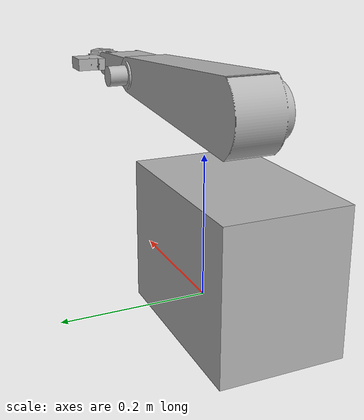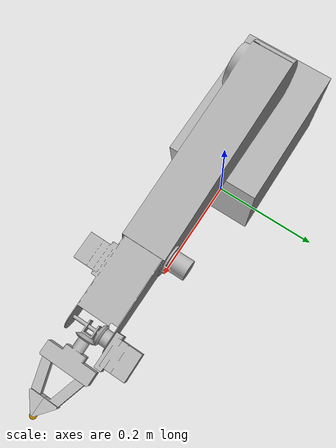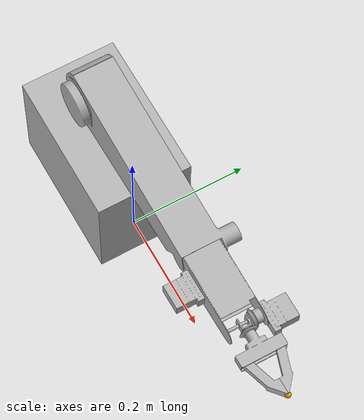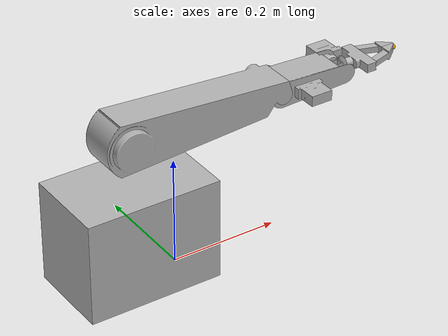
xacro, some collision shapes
<?xml version="1.0"?>
<robot xmlns:xacro="http://www.ros.org/wiki/xacro" name="tr5" >

    <!-- common stuff -->

    <!-- tr5 -->
    <xacro:include filename="$(find tr5_description)/urdf/tr5_basic.urdf.xacro" />

    <!-- arm -->
    <xacro:tr5_robot prefix="tr5" joint_limited="false"/>

    <link name="world" />

    <joint name="world_joint" type="fixed">
        <parent link="world" />
        <child link = "tr5base_link" />
        <origin xyz="-0.08525 0.0 0.0" rpy="0.0 0.0 0.0" />
    </joint>

</robot>

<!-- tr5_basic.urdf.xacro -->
<robot xmlns:xacro="http://www.ros.org/wiki/xacro">

    <xacro:include filename="$(find tr5_description)/urdf/tr5.transmission.xacro" />

    <property name="pi" value="3.14159265" />

    <!-- @todo Inertia parameters -->

    <property name="base_mass" value="4.0" />  <!-- This mass might be incorrect -->
    <property name="shoulder_mass" value="3.7000" />
    <property name="arm_mass" value="8.3930" />
    <property name="upper_arm_mass" value="8.3930" />
    <property name="forearm_mass" value="2.2750" />
    <property name="wrist_1_mass" value="1.2190" />
    <property name="wrist_2_mass" value="1.2190" />
    <property name="gripper_mass" value="0.1879" />

    <!-- link lengths used in model -->
    <property name="base_height" value=".085" />
    <property name="shoulder_off_x" value="0.08525" />
    <property name="shoulder_height" value=".190" />
    <property name="shoulder_length" value=".015" />
    <property name="upper_arm_length" value=".285" />
    <property name="upper_arm_off_z" value=".190" />
    <property name="forearm_length" value=".130" />
    <property name="forearm_off_x" value=".200" />
    <property name="wrist_1_length" value=".01" />
    <property name="wrist_2_length" value=".046" />
    <property name="wrist_1_off_x" value=".130" />
    <property name="wrist_2_off_x" value=".01" />
    <property name="finger_length" value=".067" />
    <property name="gripper_off_x" value=".046" />
    <property name="gripper_off_y" value=".02716" />
    <property name="end_effector_off_x" value=".113" />

    <!-- limits model -->
    <xacro:macro name="cylinder_inertial" params="radius length mass *origin">
        <inertial>
            <mass value="${mass}" />
            <insert_block name="origin" />
            <inertia ixx="${0.0833333 * mass * (3 * radius * radius + length * length)}" ixy="0.0" ixz="0.0"
                     iyy="${0.0833333 * mass * (3 * radius * radius + length * length)}" iyz="0.0"
                     izz="${0.5 * mass * radius * radius}" />
        </inertial>
    </xacro:macro>

    <xacro:macro name="tr5_robot" params="prefix joint_limited">

        <!-- Base %%%%%%%%%%%%%%%%%%%%%%%%%%%%%%%%%%%%%%%%%%%%%%%%%%%%%%%%%%%%%%%%%%%%%%%%%%%%%%%%%%%%%%%%%%%%%%%%%%%%%%%% -->

        <link name="${prefix}base_link" >
            <visual>
                <geometry>
                    <mesh filename="package://tr5_description/meshes/TR5_Base.dae" />
                </geometry>
                <origin xyz="0.0 0.0 0.0" rpy="0.0 0.0 0.0"/>
                <material name="LightGrey">
                    <color rgba="0.7 0.7 0.7 1.0"/>
                </material>
            </visual>
            <collision>
                <geometry>
                    <box size="0.250 .160 ${shoulder_height}"/>
                </geometry>
                <origin xyz="0.0 0.0 ${shoulder_height/2}" rpy="0.0 0.0 0.0"/>
            </collision>
            <xacro:cylinder_inertial radius="0.06" length="0.05" mass="${base_mass}">
                <origin xyz="0.0 0.0 0.0" rpy="0 0 0" />
            </xacro:cylinder_inertial>
        </link>

        <joint name="${prefix}shoulder_pan_joint" type="revolute">
            <parent link="${prefix}base_link" />
            <child link = "${prefix}shoulder_link" />
            <origin xyz="${shoulder_off_x} 0.0 ${base_height}" rpy="0.0 0.0 0.0" />
            <axis xyz="0 0 1" />
            <xacro:unless value="${joint_limited}">
                <limit lower="-1.39626" upper="1.39626" effort="150.0" velocity="0.802851"/>
            </xacro:unless>
            <xacro:if value="${joint_limited}">
                <limit lower="-1.39626" upper="1.39626" effort="150.0" velocity="0.802851"/>
            </xacro:if>
            <dynamics damping="0.0" friction="0.0"/>
        </joint>

        <!-- Shoulder %%%%%%%%%%%%%%%%%%%%%%%%%%%%%%%%%%%%%%%%%%%%%%%%%%%%%%%%%%%%%%%%%%%%%%%%%%%%%%%%%%%%%%%%%%%%%%%%%%%%%%%% -->

        <link name="${prefix}shoulder_link">
            <visual>
                <geometry>
                    <mesh filename="package://tr5_description/meshes/TR5_Shoulder.dae" />
                </geometry>
                <origin xyz="0.0 0.0 0.0" rpy="0.0 0.0 0.0"/>
                <material name="LightGrey">
                    <color rgba="0.7 0.7 0.7 1.0"/>
                </material>
            </visual>
            <collision>
                <geometry>
                    <cylinder length="${shoulder_length/2}" radius="0.02"/>
                </geometry>
                <origin xyz="0.0 0.0 ${shoulder_length/2}" rpy="0.0 0.0 0.0"/>
            </collision>
            <xacro:cylinder_inertial radius="0.06" length="0.15" mass="${shoulder_mass}">
                <origin xyz="0.0 0.0 0.0" rpy="0 0 0" />
            </xacro:cylinder_inertial>
        </link>

        <joint name="${prefix}shoulder_lift_joint" type="revolute">
            <parent link="${prefix}shoulder_link" />
            <child link = "${prefix}upper_arm_link" />
            <origin xyz="0.0 0.0 ${upper_arm_off_z}" rpy="0.0 0.0 0.0" />
            <axis xyz="0 -1 0" />
            <xacro:unless value="${joint_limited}">
                <limit lower="-0.52360" upper="1.22173" effort="150.0" velocity="0.802851"/>
            </xacro:unless>
            <xacro:if value="${joint_limited}">
                <limit lower="-0.52360" upper="1.22173" effort="150.0" velocity="0.802851"/>
            </xacro:if>
            <dynamics damping="0.0" friction="0.0"/>
        </joint>

        <!-- Upper Arm %%%%%%%%%%%%%%%%%%%%%%%%%%%%%%%%%%%%%%%%%%%%%%%%%%%%%%%%%%%%%%%%%%%%%%%%%%%%%%%%%%%%%%%%%%%%%%%%%%%%%%%% -->

        <link name="${prefix}upper_arm_link">
            <visual>
                <geometry>
                    <mesh filename="package://tr5_description/meshes/TR5_UpperArm.dae" />
                </geometry>
                <origin xyz="0.0 0.0 0.0" rpy="0.0 0.0 0.0"/>
                <material name="LightGrey">
                    <color rgba="0.7 0.7 0.7 1.0"/>
                </material>
            </visual>
            <collision>
                <geometry>
                    <cylinder length="${upper_arm_length/2}" radius="0.02"/>
                </geometry>
                <origin xyz="0.0 0.0 ${upper_arm_length/2}" rpy="0.0 0.0 0.0"/>
            </collision>
            <xacro:cylinder_inertial radius="0.06" length="0.15" mass="${upper_arm_mass}">
                <origin xyz="0.0 0.0 0.0" rpy="0 0 0" />
            </xacro:cylinder_inertial>
        </link>

        <joint name="${prefix}elbow_joint" type="revolute">
            <parent link="${prefix}upper_arm_link" />
            <child link = "${prefix}forearm_link" />
            <origin xyz="${forearm_off_x} 0.0 0.0" rpy="0.0 0.0 0.0" />
            <axis xyz="0 -1 0" />
            <xacro:unless value="${joint_limited}">
                <limit lower="-1.74533" upper="0.0" effort="150.0" velocity="0.802851"/>
            </xacro:unless>
            <xacro:if value="${joint_limited}">
                <limit lower="-1.74533" upper="0.0" effort="150.0" velocity="0.802851"/>
            </xacro:if>
            <dynamics damping="0.0" friction="0.0"/>
        </joint>

        <!-- Fore Arm %%%%%%%%%%%%%%%%%%%%%%%%%%%%%%%%%%%%%%%%%%%%%%%%%%%%%%%%%%%%%%%%%%%%%%%%%%%%%%%%%%%%%%%%%%%%%%%%%%%%%%%% -->

        <link name="${prefix}forearm_link">
            <visual>
                <geometry>
                    <mesh filename="package://tr5_description/meshes/TR5_ForeArm.dae" />
                </geometry>
                <origin xyz="0.0 0.0 0.0" rpy="0.0 0.0 0.0"/>
                <material name="LightGrey">
                    <color rgba="0.7 0.7 0.7 1.0"/>
                </material>
            </visual>
            <collision>
                <geometry>
                    <cylinder length="${forearm_length/2}" radius="0.02"/>
                </geometry>
                <origin xyz="0.0 0.0 ${forearm_length/2}" rpy="0.0 0.0 0.0"/>
            </collision>
            <xacro:cylinder_inertial radius="0.06" length="0.15" mass="${forearm_mass}">
                <origin xyz="0.0 0.0 0.0" rpy="0 0 0" />
            </xacro:cylinder_inertial>
        </link>

        <joint name="${prefix}wrist_1_joint" type="revolute">
            <parent link="${prefix}forearm_link" />
            <child link = "${prefix}wrist_1_link" />
            <origin xyz="${wrist_1_off_x} 0.0 0.0" rpy="0.0 0.0 0.0" />
            <axis xyz="0 -1 0" />
            <xacro:unless value="${joint_limited}">
                <limit lower="-1.74533" upper="1.74533" effort="150.0" velocity="0.802851"/>
            </xacro:unless>
            <xacro:if value="${joint_limited}">
                <limit lower="-1.74533" upper="1.74533" effort="150.0" velocity="0.802851"/>
            </xacro:if>
            <dynamics damping="0.0" friction="0.0"/>
        </joint>

        <!-- Wrist_pitch %%%%%%%%%%%%%%%%%%%%%%%%%%%%%%%%%%%%%%%%%%%%%%%%%%%%%%%%%%%%%%%%%%%%%%%%%%%%%%%%%%%%%%%%%%%%%%%%%%%%%%%% -->

        <link name="${prefix}wrist_1_link">
            <visual>
                <geometry>
                    <mesh filename="package://tr5_description/meshes/TR5_Wrist_1.dae" />
                </geometry>
                <origin xyz="0.0 0.0 0.0" rpy="0.0 0.0 0.0"/>
                <material name="LightGrey">
                    <color rgba="0.7 0.7 0.7 1.0"/>
                </material>
            </visual>
            <collision>
                <geometry>
                    <cylinder length="${wrist_1_length/2}" radius="0.02"/>
                </geometry>
                <origin xyz="0.0 0.0 ${wrist_1_length/2}" rpy="0.0 0.0 0.0"/>
            </collision>
            <xacro:cylinder_inertial radius="0.06" length="0.15" mass="${wrist_1_mass}">
                <origin xyz="0.0 0.0 0.0" rpy="0 0 0" />
            </xacro:cylinder_inertial>
        </link>

        <joint name="${prefix}wrist_2_joint" type="revolute">
            <parent link="${prefix}wrist_1_link" />
            <child link = "${prefix}wrist_2_link" />
            <origin xyz="${wrist_2_off_x} 0.0 0.0" rpy="0.0 0.0 0.0" />
            <axis xyz="1 0 0" />
            <xacro:unless value="${joint_limited}">
                <limit lower="-1.74533" upper="1.74533" effort="150.0" velocity="0.802851"/>
            </xacro:unless>
            <xacro:if value="${joint_limited}">
                <limit lower="-1.74533" upper="1.74533" effort="150.0" velocity="0.802851"/>
            </xacro:if>
            <dynamics damping="0.0" friction="0.0"/>
        </joint>

        <!-- Wrist_roll %%%%%%%%%%%%%%%%%%%%%%%%%%%%%%%%%%%%%%%%%%%%%%%%%%%%%%%%%%%%%%%%%%%%%%%%%%%%%%%%%%%%%%%%%%%%%%%%%%%%%%%% -->

        <link name="${prefix}wrist_2_link">
            <visual>
                <geometry>
                    <mesh filename="package://tr5_description/meshes/TR5_Wrist_2.dae" />
                </geometry>
                <origin xyz="0.0 0.0 0.0" rpy="0.0 0.0 0.0"/>
                <material name="LightGrey">
                    <color rgba="0.7 0.7 0.7 1.0"/>
                </material>
            </visual>
            <collision>
                <geometry>
                    <cylinder length="${wrist_2_length/2}" radius="0.02"/>
                </geometry>
                <origin xyz="0.0 0.0 ${wrist_2_length/2}" rpy="0.0 0.0 0.0"/>
            </collision>
            <xacro:cylinder_inertial radius="0.06" length="0.15" mass="${wrist_2_mass}">
                <origin xyz="0.0 0.0 0.0" rpy="0 0 0" />
            </xacro:cylinder_inertial>
        </link>

        <joint name="${prefix}gripper_1_joint" type="revolute">
            <parent link="${prefix}wrist_2_link" />
            <child link = "${prefix}gripper_1_link" />
            <origin xyz="${gripper_off_x} ${gripper_off_y} 0.0" rpy="0.0 0.0 0.0" />
            <axis xyz="0 0 1" />
            <xacro:unless value="${joint_limited}">
                <limit lower="0.0" upper="0.47124" effort="150.0" velocity="0.802851"/>
            </xacro:unless>
            <xacro:if value="${joint_limited}">
                <limit lower="0.0" upper="0.47124" effort="150.0" velocity="0.802851"/>
            </xacro:if>
            <dynamics damping="0.0" friction="0.0"/>
        </joint>

        <!-- Finger Left %%%%%%%%%%%%%%%%%%%%%%%%%%%%%%%%%%%%%%%%%%%%%%%%%%%%%%%%%%%%%%%%%%%%%%%%%%%%%%%%%%%%%%%%%%%%%%%%%%%%%%%% -->

        <link name="${prefix}gripper_1_link">
            <visual>
                <geometry>
                    <mesh filename="package://tr5_description/meshes/TR5_Finger.dae" />
                </geometry>
                <origin xyz="0.0 0.0 0.0" rpy="0.0 0.0 0.0"/>
                <material name="LightGrey">
                    <color rgba="0.7 0.7 0.7 1.0"/>
                </material>
            </visual>
            <collision>
                <geometry>
                    <cylinder length="${finger_length/2}" radius="0.02"/>
                </geometry>
                <origin xyz="0.0 0.0 ${finger_length/2}" rpy="0.0 0.0 0.0"/>
            </collision>
            <xacro:cylinder_inertial radius="0.06" length="0.15" mass="${gripper_mass}">
                <origin xyz="0.0 0.0 0.0" rpy="0 0 0" />
            </xacro:cylinder_inertial>
        </link>

        <joint name="${prefix}gripper_2_joint" type="revolute">
            <parent link="${prefix}wrist_2_link" />
            <child link = "${prefix}gripper_2_link" />
            <origin xyz="${gripper_off_x} -${gripper_off_y} 0.0" rpy="0.0 0.0 0.0" />
            <axis xyz="0 0 1" />
            <xacro:unless value="${joint_limited}">
                <limit lower="0.47124" upper="0.0" effort="150.0" velocity="0.802851"/>
            </xacro:unless>
            <xacro:if value="${joint_limited}">
                <limit lower="0.47124" upper="0.0" effort="150.0" velocity="0.802851"/>
            </xacro:if>
            <dynamics damping="0.0" friction="0.0"/>
        </joint>
        <!-- Finger Right %%%%%%%%%%%%%%%%%%%%%%%%%%%%%%%%%%%%%%%%%%%%%%%%%%%%%%%%%%%%%%%%%%%%%%%%%%%%%%%%%%%%%%%%%%%%%%%%%%%%%%%% -->

        <link name="${prefix}gripper_2_link">
            <visual>
                <geometry>
                    <mesh filename="package://tr5_description/meshes/TR5_Finger.dae" />
                </geometry>
                <origin xyz="0.0 0.0 0.0" rpy="3.14 0.0 0.0"/>
                <material name="LightGrey">
                    <color rgba="0.7 0.7 0.7 1.0"/>
                </material>
            </visual>
            <collision>
                <geometry>
                    <cylinder length="${finger_length/2}" radius="0.02"/>
                </geometry>
                <origin xyz="0.0 0.0 ${finger_length/2}" rpy="0.0 0.0 0.0"/>
            </collision>
            <xacro:cylinder_inertial radius="0.06" length="0.15" mass="${gripper_mass}">
                <origin xyz="0.0 0.0 0.0" rpy="0 0 0" />
            </xacro:cylinder_inertial>
        </link>

        <joint name="${prefix}end_effector_joint" type="revolute">
            <parent link="${prefix}wrist_2_link" />
            <child link = "${prefix}end_effector_link" />
            <origin xyz="${end_effector_off_x} 0.0 0.0" rpy="0.0 0.0 0.0" />
            <axis xyz="0 0 1" />
            <xacro:unless value="${joint_limited}">
                <limit lower="0.0" upper="0.0" effort="150.0" velocity="0.802851"/>
            </xacro:unless>
            <xacro:if value="${joint_limited}">
                <limit lower="0.0" upper="0.0" effort="150.0" velocity="0.802851"/>
            </xacro:if>
            <dynamics damping="0.0" friction="0.0"/>
        </joint>

        <!-- Gripper %%%%%%%%%%%%%%%%%%%%%%%%%%%%%%%%%%%%%%%%%%%%%%%%%%%%%%%%%%%%%%%%%%%%%%%%%%%%%%%%%%%%%%%%%%%%%%%%%%%%%%%% -->

        <link name="${prefix}end_effector_link">
            <visual>
                <geometry>
                    <sphere radius = "0.005"/>
                </geometry>
            </visual>
        </link>

    </xacro:macro>
</robot>
